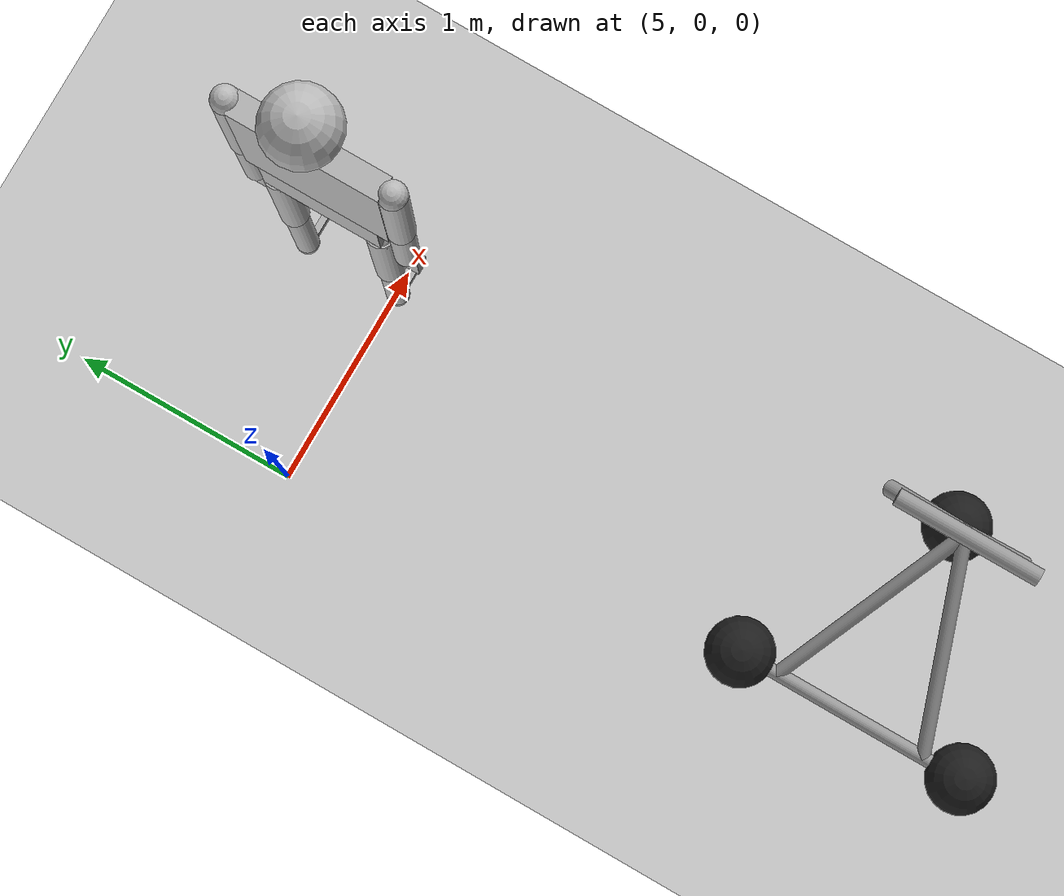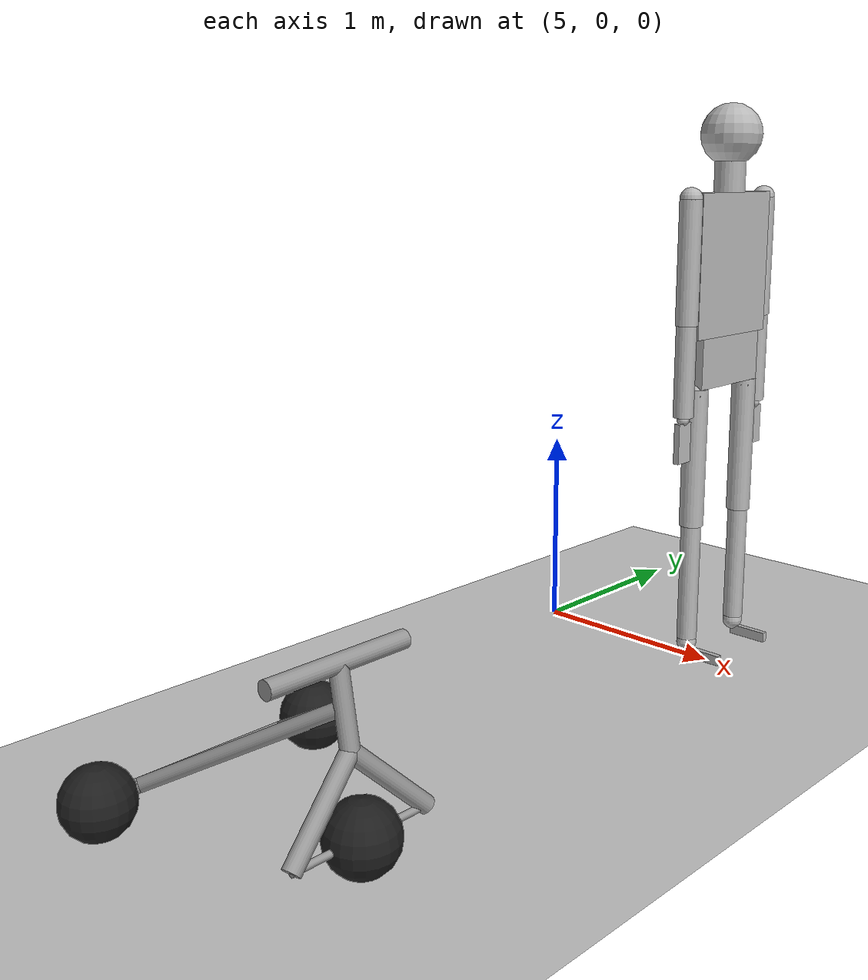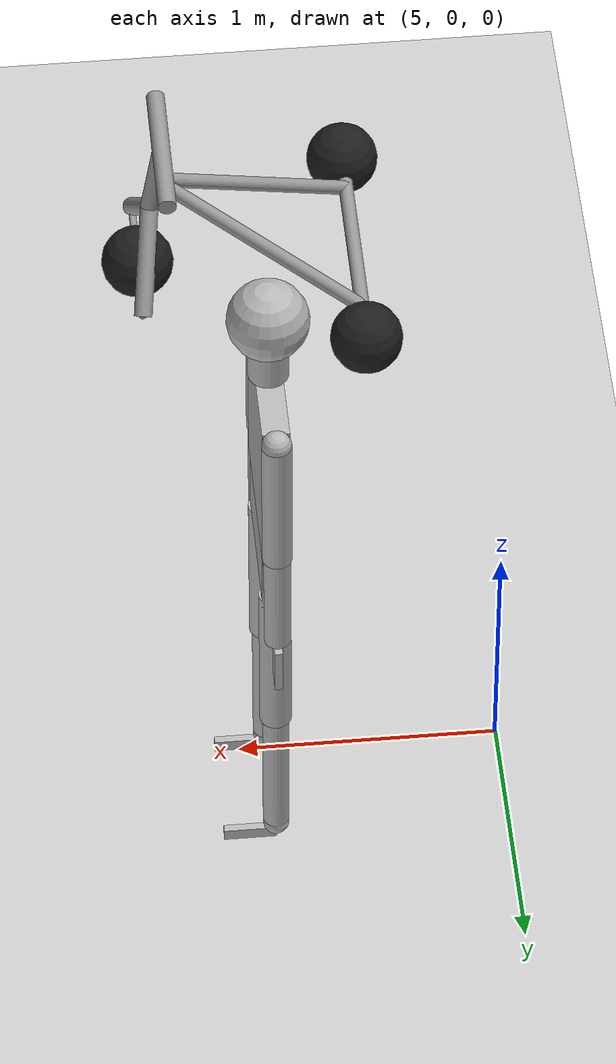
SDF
<sdf version="1.6">
 <world name="default">
  <model name="ground_plane">
   <static>1</static>
   <link name="link">
    <collision name="collision">
     <geometry><plane><normal>0 0 1</normal><size>100 100</size></plane></geometry>
     <surface><friction><ode><mu>100</mu><mu2>50</mu2></ode></friction></surface>
    </collision>
    <visual name="visual">
     <cast_shadows>0</cast_shadows>
     <geometry><plane><normal>0 0 1</normal><size>100 100</size></plane></geometry>
     <material>
      <script><uri>file://media/materials/scripts/gazebo.material</uri><name>Gazebo/Grey</name></script>
     </material>
    </visual>
   </link>
  </model>
  <model name="ragdoll">
   <pose>5.89233 0.203467 1.4 0 -0 0</pose>
   <link name="hip">
    <inertial>
     <inertia><ixx>0.1</ixx><ixy>0</ixy><ixz>0</ixz><iyy>0.1</iyy><iyz>0</iyz><izz>0.1</izz></inertia>
     <mass>10</mass>
    </inertial>
    <collision name="hip_geom">
     <pose>0 0 0.125 0 -0 0</pose>
     <geometry><box><size>0.1 0.5 0.25</size></box></geometry>
     <surface>
      <friction><ode><mu>-1</mu><mu2>-1</mu2><fdir1>0 0 0</fdir1><slip1>0</slip1><slip2>0</slip2></ode></friction>
      <bounce><restitution_coefficient>0</restitution_coefficient><threshold>100000</threshold></bounce>
      <contact>
       <ode>
        <soft_cfm>0</soft_cfm>
        <soft_erp>0.2</soft_erp>
        <kp>1e+12</kp>
        <kd>1</kd>
        <max_vel>0</max_vel>
        <min_depth>0.001</min_depth>
       </ode>
      </contact>
     </surface>
    </collision>
    <visual name="hip_geom_visual">
     <pose>0 0 0.125 0 -0 0</pose>
     <geometry><box><size>0.1 0.5 0.25</size></box></geometry>
    </visual>
    <gravity>0</gravity>
   </link>
   <link name="l_thigh_pan">
    <pose>0 0.22 0 0 -0 0</pose>
    <inertial>
     <inertia><ixx>0.01</ixx><ixy>0</ixy><ixz>0</ixz><iyy>0.01</iyy><iyz>0</iyz><izz>0.01</izz></inertia>
     <mass>1</mass>
    </inertial>
    <collision name="l_thigh_pan_geom">
     <pose>0 0 -0.03 0 -0 0</pose>
     <geometry><sphere><radius>0.06</radius></sphere></geometry>
     <surface>
      <friction><ode><mu>-1</mu><mu2>-1</mu2><fdir1>0 0 0</fdir1><slip1>0</slip1><slip2>0</slip2></ode></friction>
      <bounce><restitution_coefficient>0</restitution_coefficient><threshold>100000</threshold></bounce>
      <contact>
       <ode>
        <soft_cfm>0</soft_cfm>
        <soft_erp>0.2</soft_erp>
        <kp>1e+12</kp>
        <kd>1</kd>
        <max_vel>0</max_vel>
        <min_depth>0.001</min_depth>
       </ode>
      </contact>
     </surface>
    </collision>
    <visual name="l_thigh_pan_geom_visual">
     <pose>0 0 -0.03 0 -0 0</pose>
     <geometry><sphere><radius>0.06</radius></sphere></geometry>
    </visual>
    <gravity>0</gravity>
   </link>
   <link name="l_thigh_lift">
    <pose>0 0.22 0 0 -0 0</pose>
    <inertial>
     <inertia><ixx>0.05</ixx><ixy>0</ixy><ixz>0</ixz><iyy>0.05</iyy><iyz>0</iyz><izz>0.05</izz></inertia>
     <mass>5</mass>
    </inertial>
    <collision name="l_thigh_lift_geom">
     <pose>0 0 -0.35 0 -0 0</pose>
     <geometry><cylinder><radius>0.06</radius><length>0.7</length></cylinder></geometry>
     <surface>
      <friction><ode><mu>-1</mu><mu2>-1</mu2><fdir1>0 0 0</fdir1><slip1>0</slip1><slip2>0</slip2></ode></friction>
      <bounce><restitution_coefficient>0</restitution_coefficient><threshold>100000</threshold></bounce>
      <contact>
       <ode>
        <soft_cfm>0</soft_cfm>
        <soft_erp>0.2</soft_erp>
        <kp>1e+12</kp>
        <kd>1</kd>
        <max_vel>0</max_vel>
        <min_depth>0.001</min_depth>
       </ode>
      </contact>
     </surface>
    </collision>
    <visual name="l_thigh_lift_geom_visual">
     <pose>0 0 -0.35 0 -0 0</pose>
     <geometry><cylinder><radius>0.06</radius><length>0.7</length></cylinder></geometry>
    </visual>
    <gravity>0</gravity>
   </link>
   <link name="l_calf">
    <pose>0 0.22 -0.7 0 -0 0</pose>
    <inertial>
     <inertia><ixx>0.02</ixx><ixy>0</ixy><ixz>0</ixz><iyy>0.02</iyy><iyz>0</iyz><izz>0.02</izz></inertia>
     <mass>2</mass>
    </inertial>
    <collision name="l_calf_geom">
     <pose>0 0 -0.3 0 -0 0</pose>
     <geometry><cylinder><radius>0.05</radius><length>0.6</length></cylinder></geometry>
     <surface>
      <friction><ode><mu>-1</mu><mu2>-1</mu2><fdir1>0 0 0</fdir1><slip1>0</slip1><slip2>0</slip2></ode></friction>
      <bounce><restitution_coefficient>0</restitution_coefficient><threshold>100000</threshold></bounce>
      <contact>
       <ode>
        <soft_cfm>0</soft_cfm>
        <soft_erp>0.2</soft_erp>
        <kp>1e+12</kp>
        <kd>1</kd>
        <max_vel>0</max_vel>
        <min_depth>0.001</min_depth>
       </ode>
      </contact>
     </surface>
    </collision>
    <visual name="l_calf_geom_visual">
     <pose>0 0 -0.3 0 -0 0</pose>
     <geometry><cylinder><radius>0.05</radius><length>0.6</length></cylinder></geometry>
    </visual>
    <gravity>0</gravity>
   </link>
   <link name="l_ankle">
    <pose>0 0.22 -1.325 0 -0 0</pose>
    <inertial>
     <inertia><ixx>0.01</ixx><ixy>0</ixy><ixz>0</ixz><iyy>0.01</iyy><iyz>0</iyz><izz>0.01</izz></inertia>
     <mass>1</mass>
    </inertial>
    <collision name="l_ankle_geom">
     <geometry><sphere><radius>0.05</radius></sphere></geometry>
     <surface>
      <friction><ode><mu>-1</mu><mu2>-1</mu2><fdir1>0 0 0</fdir1><slip1>0</slip1><slip2>0</slip2></ode></friction>
      <bounce><restitution_coefficient>0</restitution_coefficient><threshold>100000</threshold></bounce>
      <contact>
       <ode>
        <soft_cfm>0</soft_cfm>
        <soft_erp>0.2</soft_erp>
        <kp>1e+12</kp>
        <kd>1</kd>
        <max_vel>0</max_vel>
        <min_depth>0.001</min_depth>
       </ode>
      </contact>
     </surface>
    </collision>
    <visual name="l_ankle_geom_visual"><geometry><sphere><radius>0.05</radius></sphere></geometry></visual>
    <gravity>0</gravity>
   </link>
   <link name="l_foot">
    <pose>0 0.22 -1.35 0 -0 0</pose>
    <inertial>
     <pose>0.1 0 0 0 -0 0</pose>
     <inertia><ixx>0.01</ixx><ixy>0</ixy><ixz>0</ixz><iyy>0.01</iyy><iyz>0</iyz><izz>0.01</izz></inertia>
     <mass>1</mass>
    </inertial>
    <collision name="l_foot_geom">
     <pose>0.1 0 -0.025 0 -0 0</pose>
     <geometry><box><size>0.2 0.03 0.05</size></box></geometry>
     <surface>
      <friction><ode><mu>-1</mu><mu2>-1</mu2><fdir1>0 0 0</fdir1><slip1>0</slip1><slip2>0</slip2></ode></friction>
      <bounce><restitution_coefficient>0</restitution_coefficient><threshold>100000</threshold></bounce>
      <contact>
       <ode>
        <soft_cfm>0</soft_cfm>
        <soft_erp>0.2</soft_erp>
        <kp>1e+12</kp>
        <kd>1</kd>
        <max_vel>0</max_vel>
        <min_depth>0.001</min_depth>
       </ode>
      </contact>
     </surface>
    </collision>
    <visual name="l_foot_geom_visual">
     <pose>0.1 0 -0.025 0 -0 0</pose>
     <geometry><box><size>0.2 0.03 0.05</size></box></geometry>
    </visual>
   </link>
   <link name="r_thigh_pan">
    <pose>0 -0.22 0 0 -0 0</pose>
    <inertial>
     <inertia><ixx>0.01</ixx><ixy>0</ixy><ixz>0</ixz><iyy>0.01</iyy><iyz>0</iyz><izz>0.01</izz></inertia>
     <mass>1</mass>
    </inertial>
    <collision name="r_thigh_pan_geom">
     <pose>0 0 -0.03 0 -0 0</pose>
     <geometry><sphere><radius>0.06</radius></sphere></geometry>
     <surface>
      <friction><ode><mu>-1</mu><mu2>-1</mu2><fdir1>0 0 0</fdir1><slip1>0</slip1><slip2>0</slip2></ode></friction>
      <bounce><restitution_coefficient>0</restitution_coefficient><threshold>100000</threshold></bounce>
      <contact>
       <ode>
        <soft_cfm>0</soft_cfm>
        <soft_erp>0.2</soft_erp>
        <kp>1e+12</kp>
        <kd>1</kd>
        <max_vel>0</max_vel>
        <min_depth>0.001</min_depth>
       </ode>
      </contact>
     </surface>
    </collision>
    <visual name="r_thigh_pan_geom_visual">
     <pose>0 0 -0.03 0 -0 0</pose>
     <geometry><sphere><radius>0.06</radius></sphere></geometry>
    </visual>
    <gravity>0</gravity>
   </link>
   <link name="r_thigh_lift">
    <pose>0 -0.22 0 0 -0 0</pose>
    <inertial>
     <inertia><ixx>0.05</ixx><ixy>0</ixy><ixz>0</ixz><iyy>0.05</iyy><iyz>0</iyz><izz>0.05</izz></inertia>
     <mass>5</mass>
    </inertial>
    <collision name="r_thigh_lift_geom">
     <pose>0 0 -0.35 0 -0 0</pose>
     <geometry><cylinder><radius>0.06</radius><length>0.7</length></cylinder></geometry>
     <surface>
      <friction><ode><mu>-1</mu><mu2>-1</mu2><fdir1>0 0 0</fdir1><slip1>0</slip1><slip2>0</slip2></ode></friction>
      <bounce><restitution_coefficient>0</restitution_coefficient><threshold>100000</threshold></bounce>
      <contact>
       <ode>
        <soft_cfm>0</soft_cfm>
        <soft_erp>0.2</soft_erp>
        <kp>1e+12</kp>
        <kd>1</kd>
        <max_vel>0</max_vel>
        <min_depth>0.001</min_depth>
       </ode>
      </contact>
     </surface>
    </collision>
    <visual name="r_thigh_lift_geom_visual">
     <pose>0 0 -0.35 0 -0 0</pose>
     <geometry><cylinder><radius>0.06</radius><length>0.7</length></cylinder></geometry>
    </visual>
    <gravity>0</gravity>
   </link>
   <link name="r_calf">
    <pose>0 -0.22 -0.7 0 -0 0</pose>
    <inertial>
     <inertia><ixx>0.02</ixx><ixy>0</ixy><ixz>0</ixz><iyy>0.02</iyy><iyz>0</iyz><izz>0.02</izz></inertia>
     <mass>2</mass>
    </inertial>
    <collision name="r_calf_geom">
     <pose>0 0 -0.3 0 -0 0</pose>
     <geometry><cylinder><radius>0.05</radius><length>0.6</length></cylinder></geometry>
     <surface>
      <friction><ode><mu>-1</mu><mu2>-1</mu2><fdir1>0 0 0</fdir1><slip1>0</slip1><slip2>0</slip2></ode></friction>
      <bounce><restitution_coefficient>0</restitution_coefficient><threshold>100000</threshold></bounce>
      <contact>
       <ode>
        <soft_cfm>0</soft_cfm>
        <soft_erp>0.2</soft_erp>
        <kp>1e+12</kp>
        <kd>1</kd>
        <max_vel>0</max_vel>
        <min_depth>0.001</min_depth>
       </ode>
      </contact>
     </surface>
    </collision>
    <visual name="r_calf_geom_visual">
     <pose>0 0 -0.3 0 -0 0</pose>
     <geometry><cylinder><radius>0.05</radius><length>0.6</length></cylinder></geometry>
    </visual>
    <gravity>0</gravity>
   </link>
   <link name="r_ankle">
    <pose>0 -0.22 -1.325 0 -0 0</pose>
    <inertial>
     <inertia><ixx>0.01</ixx><ixy>0</ixy><ixz>0</ixz><iyy>0.01</iyy><iyz>0</iyz><izz>0.01</izz></inertia>
     <mass>1</mass>
    </inertial>
    <collision name="r_ankle_geom">
     <geometry><sphere><radius>0.05</radius></sphere></geometry>
     <surface>
      <friction><ode><mu>-1</mu><mu2>-1</mu2><fdir1>0 0 0</fdir1><slip1>0</slip1><slip2>0</slip2></ode></friction>
      <bounce><restitution_coefficient>0</restitution_coefficient><threshold>100000</threshold></bounce>
      <contact>
       <ode>
        <soft_cfm>0</soft_cfm>
        <soft_erp>0.2</soft_erp>
        <kp>1e+12</kp>
        <kd>1</kd>
        <max_vel>0</max_vel>
        <min_depth>0.001</min_depth>
       </ode>
      </contact>
     </surface>
    </collision>
    <visual name="r_ankle_geom_visual"><geometry><sphere><radius>0.05</radius></sphere></geometry></visual>
    <gravity>0</gravity>
   </link>
   <link name="r_foot">
    <pose>0 -0.22 -1.35 0 -0 0</pose>
    <inertial>
     <pose>0.1 0 0 0 -0 0</pose>
     <inertia><ixx>0.01</ixx><ixy>0</ixy><ixz>0</ixz><iyy>0.01</iyy><iyz>0</iyz><izz>0.01</izz></inertia>
     <mass>1</mass>
    </inertial>
    <collision name="r_foot_geom">
     <pose>0.1 0 -0.025 0 -0 0</pose>
     <geometry><box><size>0.2 0.03 0.05</size></box></geometry>
     <surface>
      <friction><ode><mu>-1</mu><mu2>-1</mu2><fdir1>0 0 0</fdir1><slip1>0</slip1><slip2>0</slip2></ode></friction>
      <bounce><restitution_coefficient>0</restitution_coefficient><threshold>100000</threshold></bounce>
      <contact>
       <ode>
        <soft_cfm>0</soft_cfm>
        <soft_erp>0.2</soft_erp>
        <kp>1e+12</kp>
        <kd>1</kd>
        <max_vel>0</max_vel>
        <min_depth>0.001</min_depth>
       </ode>
      </contact>
     </surface>
    </collision>
    <visual name="r_foot_geom_visual">
     <pose>0.1 0 -0.025 0 -0 0</pose>
     <geometry><box><size>0.2 0.03 0.05</size></box></geometry>
    </visual>
   </link>
   <link name="torso">
    <pose>0 0 0.25 0 -0 0</pose>
    <inertial>
     <inertia><ixx>0.3</ixx><ixy>0</ixy><ixz>0</ixz><iyy>0.3</iyy><iyz>0</iyz><izz>0.3</izz></inertia>
     <mass>30</mass>
    </inertial>
    <collision name="torso_geom">
     <pose>0 0 0.35 0 -0 0</pose>
     <geometry><box><size>0.1 0.6 0.7</size></box></geometry>
     <surface>
      <friction><ode><mu>-1</mu><mu2>-1</mu2><fdir1>0 0 0</fdir1><slip1>0</slip1><slip2>0</slip2></ode></friction>
      <bounce><restitution_coefficient>0</restitution_coefficient><threshold>100000</threshold></bounce>
      <contact>
       <ode>
        <soft_cfm>0</soft_cfm>
        <soft_erp>0.2</soft_erp>
        <kp>1e+12</kp>
        <kd>1</kd>
        <max_vel>0</max_vel>
        <min_depth>0.001</min_depth>
       </ode>
      </contact>
     </surface>
    </collision>
    <visual name="torso_geom_visual">
     <pose>0 0 0.35 0 -0 0</pose>
     <geometry><box><size>0.1 0.6 0.7</size></box></geometry>
    </visual>
    <gravity>0</gravity>
   </link>
   <link name="l_shoulder">
    <pose>0 0.3275 0.9225 0 -0 0</pose>
    <inertial>
     <inertia><ixx>0.01</ixx><ixy>0</ixy><ixz>0</ixz><iyy>0.01</iyy><iyz>0</iyz><izz>0.01</izz></inertia>
     <mass>1</mass>
    </inertial>
    <collision name="l_shoulder_geom">
     <geometry><sphere><radius>0.055</radius></sphere></geometry>
     <surface>
      <friction><ode><mu>-1</mu><mu2>-1</mu2><fdir1>0 0 0</fdir1><slip1>0</slip1><slip2>0</slip2></ode></friction>
      <bounce><restitution_coefficient>0</restitution_coefficient><threshold>100000</threshold></bounce>
      <contact>
       <ode>
        <soft_cfm>0</soft_cfm>
        <soft_erp>0.2</soft_erp>
        <kp>1e+12</kp>
        <kd>1</kd>
        <max_vel>0</max_vel>
        <min_depth>0.001</min_depth>
       </ode>
      </contact>
     </surface>
    </collision>
    <visual name="l_shoulder_geom_visual"><geometry><sphere><radius>0.055</radius></sphere></geometry></visual>
    <gravity>0</gravity>
   </link>
   <link name="l_upper_arm">
    <pose>0 0.3275 0.9225 0 -0 0</pose>
    <inertial>
     <inertia><ixx>0.02</ixx><ixy>0</ixy><ixz>0</ixz><iyy>0.02</iyy><iyz>0</iyz><izz>0.02</izz></inertia>
     <mass>2</mass>
    </inertial>
    <collision name="l_upper_arm_geom">
     <pose>0 0 -0.3 0 -0 0</pose>
     <geometry><cylinder><radius>0.055</radius><length>0.6</length></cylinder></geometry>
     <surface>
      <friction><ode><mu>-1</mu><mu2>-1</mu2><fdir1>0 0 0</fdir1><slip1>0</slip1><slip2>0</slip2></ode></friction>
      <bounce><restitution_coefficient>0</restitution_coefficient><threshold>100000</threshold></bounce>
      <contact>
       <ode>
        <soft_cfm>0</soft_cfm>
        <soft_erp>0.2</soft_erp>
        <kp>1e+12</kp>
        <kd>1</kd>
        <max_vel>0</max_vel>
        <min_depth>0.001</min_depth>
       </ode>
      </contact>
     </surface>
    </collision>
    <visual name="l_upper_arm_geom_visual">
     <pose>0 0 -0.3 0 -0 0</pose>
     <geometry><cylinder><radius>0.055</radius><length>0.6</length></cylinder></geometry>
    </visual>
    <gravity>0</gravity>
   </link>
   <link name="l_forearm">
    <pose>0 0.3275 0.3225 0 -0 0</pose>
    <inertial>
     <inertia><ixx>0.01</ixx><ixy>0</ixy><ixz>0</ixz><iyy>0.01</iyy><iyz>0</iyz><izz>0.01</izz></inertia>
     <mass>1</mass>
    </inertial>
    <collision name="l_forearm_geom">
     <pose>0 0 -0.225 0 -0 0</pose>
     <geometry><cylinder><radius>0.05</radius><length>0.45</length></cylinder></geometry>
     <surface>
      <friction><ode><mu>-1</mu><mu2>-1</mu2><fdir1>0 0 0</fdir1><slip1>0</slip1><slip2>0</slip2></ode></friction>
      <bounce><restitution_coefficient>0</restitution_coefficient><threshold>100000</threshold></bounce>
      <contact>
       <ode>
        <soft_cfm>0</soft_cfm>
        <soft_erp>0.2</soft_erp>
        <kp>1e+12</kp>
        <kd>1</kd>
        <max_vel>0</max_vel>
        <min_depth>0.001</min_depth>
       </ode>
      </contact>
     </surface>
    </collision>
    <visual name="l_forearm_geom_visual">
     <pose>0 0 -0.225 0 -0 0</pose>
     <geometry><cylinder><radius>0.05</radius><length>0.45</length></cylinder></geometry>
    </visual>
    <gravity>0</gravity>
   </link>
   <link name="l_wrist">
    <pose>0 0.3275 -0.1425 0 -0 0</pose>
    <inertial>
     <inertia><ixx>0.01</ixx><ixy>0</ixy><ixz>0</ixz><iyy>0.01</iyy><iyz>0</iyz><izz>0.01</izz></inertia>
     <mass>1</mass>
    </inertial>
    <collision name="l_wrist_geom">
     <geometry><sphere><radius>0.03</radius></sphere></geometry>
     <surface>
      <friction><ode><mu>-1</mu><mu2>-1</mu2><fdir1>0 0 0</fdir1><slip1>0</slip1><slip2>0</slip2></ode></friction>
      <bounce><restitution_coefficient>0</restitution_coefficient><threshold>100000</threshold></bounce>
      <contact>
       <ode>
        <soft_cfm>0</soft_cfm>
        <soft_erp>0.2</soft_erp>
        <kp>1e+12</kp>
        <kd>1</kd>
        <max_vel>0</max_vel>
        <min_depth>0.001</min_depth>
       </ode>
      </contact>
     </surface>
    </collision>
    <visual name="l_wrist_geom_visual"><geometry><sphere><radius>0.03</radius></sphere></geometry></visual>
    <gravity>0</gravity>
   </link>
   <link name="l_hand">
    <pose>0 0.3275 -0.1575 0 -0 0</pose>
    <inertial>
     <inertia><ixx>0.01</ixx><ixy>0</ixy><ixz>0</ixz><iyy>0.01</iyy><iyz>0</iyz><izz>0.01</izz></inertia>
     <mass>1</mass>
    </inertial>
    <collision name="l_hand_geom">
     <pose>0 0 -0.1 0 -0 0</pose>
     <geometry><box><size>0.03 0.1 0.2</size></box></geometry>
     <surface>
      <friction><ode><mu>-1</mu><mu2>-1</mu2><fdir1>0 0 0</fdir1><slip1>0</slip1><slip2>0</slip2></ode></friction>
      <bounce><restitution_coefficient>0</restitution_coefficient><threshold>100000</threshold></bounce>
      <contact>
       <ode>
        <soft_cfm>0</soft_cfm>
        <soft_erp>0.2</soft_erp>
        <kp>1e+12</kp>
        <kd>1</kd>
        <max_vel>0</max_vel>
        <min_depth>0.001</min_depth>
       </ode>
      </contact>
     </surface>
    </collision>
    <visual name="l_hand_geom_visual">
     <pose>0 0 -0.1 0 -0 0</pose>
     <geometry><box><size>0.03 0.1 0.2</size></box></geometry>
    </visual>
    <gravity>0</gravity>
   </link>
   <link name="neck">
    <pose>0 0 0.95 0 -0 0</pose>
    <inertial>
     <inertia><ixx>0.01</ixx><ixy>0</ixy><ixz>0</ixz><iyy>0.01</iyy><iyz>0</iyz><izz>0.01</izz></inertia>
     <mass>1</mass>
    </inertial>
    <collision name="neck_geom">
     <pose>0 0 0.1 0 -0 0</pose>
     <geometry><cylinder><radius>0.075</radius><length>0.2</length></cylinder></geometry>
     <surface>
      <friction><ode><mu>-1</mu><mu2>-1</mu2><fdir1>0 0 0</fdir1><slip1>0</slip1><slip2>0</slip2></ode></friction>
      <bounce><restitution_coefficient>0</restitution_coefficient><threshold>100000</threshold></bounce>
      <contact>
       <ode>
        <soft_cfm>0</soft_cfm>
        <soft_erp>0.2</soft_erp>
        <kp>1e+12</kp>
        <kd>1</kd>
        <max_vel>0</max_vel>
        <min_depth>0.001</min_depth>
       </ode>
      </contact>
     </surface>
    </collision>
    <visual name="neck_geom_visual">
     <pose>0 0 0.1 0 -0 0</pose>
     <geometry><cylinder><radius>0.075</radius><length>0.2</length></cylinder></geometry>
    </visual>
    <gravity>0</gravity>
   </link>
   <link name="head">
    <pose>0 0 1.225 0 -0 0</pose>
    <inertial>
     <inertia><ixx>0.1</ixx><ixy>0</ixy><ixz>0</ixz><iyy>0.1</iyy><iyz>0</iyz><izz>0.1</izz></inertia>
     <mass>10</mass>
    </inertial>
    <collision name="head_geom">
     <geometry><sphere><radius>0.15</radius></sphere></geometry>
     <surface>
      <friction><ode><mu>-1</mu><mu2>-1</mu2><fdir1>0 0 0</fdir1><slip1>0</slip1><slip2>0</slip2></ode></friction>
      <bounce><restitution_coefficient>0</restitution_coefficient><threshold>100000</threshold></bounce>
      <contact>
       <ode>
        <soft_cfm>0</soft_cfm>
        <soft_erp>0.2</soft_erp>
        <kp>1e+12</kp>
        <kd>1</kd>
        <max_vel>0</max_vel>
        <min_depth>0.001</min_depth>
       </ode>
      </contact>
     </surface>
    </collision>
    <visual name="head_geom_visual"><geometry><sphere><radius>0.15</radius></sphere></geometry></visual>
    <gravity>0</gravity>
   </link>
   <link name="r_shoulder">
    <pose>0 -0.3275 0.9225 0 -0 0</pose>
    <inertial>
     <inertia><ixx>0.01</ixx><ixy>0</ixy><ixz>0</ixz><iyy>0.01</iyy><iyz>0</iyz><izz>0.01</izz></inertia>
     <mass>1</mass>
    </inertial>
    <collision name="r_shoulder_geom">
     <geometry><sphere><radius>0.055</radius></sphere></geometry>
     <surface>
      <friction><ode><mu>-1</mu><mu2>-1</mu2><fdir1>0 0 0</fdir1><slip1>0</slip1><slip2>0</slip2></ode></friction>
      <bounce><restitution_coefficient>0</restitution_coefficient><threshold>100000</threshold></bounce>
      <contact>
       <ode>
        <soft_cfm>0</soft_cfm>
        <soft_erp>0.2</soft_erp>
        <kp>1e+12</kp>
        <kd>1</kd>
        <max_vel>0</max_vel>
        <min_depth>0.001</min_depth>
       </ode>
      </contact>
     </surface>
    </collision>
    <visual name="r_shoulder_geom_visual"><geometry><sphere><radius>0.055</radius></sphere></geometry></visual>
    <gravity>0</gravity>
   </link>
   <link name="r_upper_arm">
    <pose>0 -0.3275 0.9225 0 -0 0</pose>
    <inertial>
     <inertia><ixx>0.02</ixx><ixy>0</ixy><ixz>0</ixz><iyy>0.02</iyy><iyz>0</iyz><izz>0.02</izz></inertia>
     <mass>2</mass>
    </inertial>
    <collision name="r_upper_arm_geom">
     <pose>0 0 -0.3 0 -0 0</pose>
     <geometry><cylinder><radius>0.055</radius><length>0.6</length></cylinder></geometry>
     <surface>
      <friction><ode><mu>-1</mu><mu2>-1</mu2><fdir1>0 0 0</fdir1><slip1>0</slip1><slip2>0</slip2></ode></friction>
      <bounce><restitution_coefficient>0</restitution_coefficient><threshold>100000</threshold></bounce>
      <contact>
       <ode>
        <soft_cfm>0</soft_cfm>
        <soft_erp>0.2</soft_erp>
        <kp>1e+12</kp>
        <kd>1</kd>
        <max_vel>0</max_vel>
        <min_depth>0.001</min_depth>
       </ode>
      </contact>
     </surface>
    </collision>
    <visual name="r_upper_arm_geom_visual">
     <pose>0 0 -0.3 0 -0 0</pose>
     <geometry><cylinder><radius>0.055</radius><length>0.6</length></cylinder></geometry>
    </visual>
    <gravity>0</gravity>
   </link>
   <link name="r_forearm">
    <pose>0 -0.3275 0.3225 0 -0 0</pose>
    <inertial>
     <inertia><ixx>0.01</ixx><ixy>0</ixy><ixz>0</ixz><iyy>0.01</iyy><iyz>0</iyz><izz>0.01</izz></inertia>
     <mass>1</mass>
    </inertial>
    <collision name="r_forearm_geom">
     <pose>0 0 -0.225 0 -0 0</pose>
     <geometry><cylinder><radius>0.05</radius><length>0.45</length></cylinder></geometry>
     <surface>
      <friction><ode><mu>-1</mu><mu2>-1</mu2><fdir1>0 0 0</fdir1><slip1>0</slip1><slip2>0</slip2></ode></friction>
      <bounce><restitution_coefficient>0</restitution_coefficient><threshold>100000</threshold></bounce>
      <contact>
       <ode>
        <soft_cfm>0</soft_cfm>
        <soft_erp>0.2</soft_erp>
        <kp>1e+12</kp>
        <kd>1</kd>
        <max_vel>0</max_vel>
        <min_depth>0.001</min_depth>
       </ode>
      </contact>
     </surface>
    </collision>
    <visual name="r_forearm_geom_visual">
     <pose>0 0 -0.225 0 -0 0</pose>
     <geometry><cylinder><radius>0.05</radius><length>0.45</length></cylinder></geometry>
    </visual>
    <gravity>0</gravity>
   </link>
   <link name="r_wrist">
    <pose>0 -0.3275 -0.1425 0 -0 0</pose>
    <inertial>
     <inertia><ixx>0.01</ixx><ixy>0</ixy><ixz>0</ixz><iyy>0.01</iyy><iyz>0</iyz><izz>0.01</izz></inertia>
     <mass>1</mass>
    </inertial>
    <collision name="r_wrist_geom">
     <geometry><sphere><radius>0.03</radius></sphere></geometry>
     <surface>
      <friction><ode><mu>-1</mu><mu2>-1</mu2><fdir1>0 0 0</fdir1><slip1>0</slip1><slip2>0</slip2></ode></friction>
      <bounce><restitution_coefficient>0</restitution_coefficient><threshold>100000</threshold></bounce>
      <contact>
       <ode>
        <soft_cfm>0</soft_cfm>
        <soft_erp>0.2</soft_erp>
        <kp>1e+12</kp>
        <kd>1</kd>
        <max_vel>0</max_vel>
        <min_depth>0.001</min_depth>
       </ode>
      </contact>
     </surface>
    </collision>
    <visual name="r_wrist_geom_visual"><geometry><sphere><radius>0.03</radius></sphere></geometry></visual>
    <gravity>0</gravity>
   </link>
   <link name="r_hand">
    <pose>0 -0.3275 -0.1575 0 -0 0</pose>
    <inertial>
     <inertia><ixx>0.01</ixx><ixy>0</ixy><ixz>0</ixz><iyy>0.01</iyy><iyz>0</iyz><izz>0.01</izz></inertia>
     <mass>1</mass>
    </inertial>
    <collision name="r_hand_geom">
     <pose>0 0 -0.1 0 -0 0</pose>
     <geometry><box><size>0.03 0.1 0.2</size></box></geometry>
     <surface>
      <friction><ode><mu>-1</mu><mu2>-1</mu2><fdir1>0 0 0</fdir1><slip1>0</slip1><slip2>0</slip2></ode></friction>
      <bounce><restitution_coefficient>0</restitution_coefficient><threshold>100000</threshold></bounce>
      <contact>
       <ode>
        <soft_cfm>0</soft_cfm>
        <soft_erp>0.2</soft_erp>
        <kp>1e+12</kp>
        <kd>1</kd>
        <max_vel>0</max_vel>
        <min_depth>0.001</min_depth>
       </ode>
      </contact>
     </surface>
    </collision>
    <visual name="r_hand_geom_visual">
     <pose>0 0 -0.1 0 -0 0</pose>
     <geometry><box><size>0.03 0.1 0.2</size></box></geometry>
    </visual>
    <gravity>0</gravity>
   </link>
   <joint name="l_thigh_pan_joint" type="revolute">
    <parent>hip</parent>
    <child>l_thigh_pan</child>
    <axis>
     <dynamics>
      <damping>0</damping>
      <friction>0</friction>
      <spring_reference>0</spring_reference>
      <spring_stiffness>0</spring_stiffness>
     </dynamics>
     <limit><lower>-1.5708</lower><upper>1.5708</upper><effort>0</effort><velocity>0</velocity></limit>
     <xyz>0 0 1</xyz>
     <use_parent_model_frame>1</use_parent_model_frame>
    </axis>
   </joint>
   <joint name="l_thigh_lift_joint" type="revolute">
    <parent>l_thigh_pan</parent>
    <child>l_thigh_lift</child>
    <axis>
     <dynamics>
      <damping>0</damping>
      <friction>0</friction>
      <spring_reference>0</spring_reference>
      <spring_stiffness>0</spring_stiffness>
     </dynamics>
     <limit><lower>-1.5708</lower><upper>1.5708</upper><effort>0</effort><velocity>0</velocity></limit>
     <xyz>0 1 0</xyz>
     <use_parent_model_frame>1</use_parent_model_frame>
    </axis>
   </joint>
   <joint name="l_calf_joint" type="revolute">
    <parent>l_thigh_lift</parent>
    <child>l_calf</child>
    <axis>
     <dynamics>
      <damping>0</damping>
      <friction>0</friction>
      <spring_reference>0</spring_reference>
      <spring_stiffness>0</spring_stiffness>
     </dynamics>
     <limit><lower>-1.5708</lower><upper>1.5708</upper><effort>0</effort><velocity>0</velocity></limit>
     <xyz>0 1 0</xyz>
     <use_parent_model_frame>1</use_parent_model_frame>
    </axis>
   </joint>
   <joint name="l_ankle_joint" type="revolute">
    <parent>l_calf</parent>
    <child>l_ankle</child>
    <axis>
     <dynamics>
      <damping>0</damping>
      <friction>0</friction>
      <spring_reference>0</spring_reference>
      <spring_stiffness>0</spring_stiffness>
     </dynamics>
     <limit><lower>-1.5708</lower><upper>1.5708</upper><effort>0</effort><velocity>0</velocity></limit>
     <xyz>0 1 0</xyz>
     <use_parent_model_frame>1</use_parent_model_frame>
    </axis>
   </joint>
   <joint name="l_foot_joint" type="revolute">
    <parent>l_ankle</parent>
    <child>l_foot</child>
    <axis>
     <dynamics>
      <damping>0</damping>
      <friction>0</friction>
      <spring_reference>0</spring_reference>
      <spring_stiffness>0</spring_stiffness>
     </dynamics>
     <limit><lower>-1.5708</lower><upper>1.5708</upper><effort>0</effort><velocity>0</velocity></limit>
     <xyz>1 0 0</xyz>
     <use_parent_model_frame>1</use_parent_model_frame>
    </axis>
   </joint>
   <joint name="r_thigh_pan_joint" type="revolute">
    <parent>hip</parent>
    <child>r_thigh_pan</child>
    <axis>
     <dynamics>
      <damping>0</damping>
      <friction>0</friction>
      <spring_reference>0</spring_reference>
      <spring_stiffness>0</spring_stiffness>
     </dynamics>
     <limit><lower>-1.5708</lower><upper>1.5708</upper><effort>0</effort><velocity>0</velocity></limit>
     <xyz>0 0 1</xyz>
     <use_parent_model_frame>1</use_parent_model_frame>
    </axis>
   </joint>
   <joint name="r_thigh_lift_joint" type="revolute">
    <parent>r_thigh_pan</parent>
    <child>r_thigh_lift</child>
    <axis>
     <dynamics>
      <damping>0</damping>
      <friction>0</friction>
      <spring_reference>0</spring_reference>
      <spring_stiffness>0</spring_stiffness>
     </dynamics>
     <limit><lower>-1.5708</lower><upper>1.5708</upper><effort>0</effort><velocity>0</velocity></limit>
     <xyz>0 1 0</xyz>
     <use_parent_model_frame>1</use_parent_model_frame>
    </axis>
   </joint>
   <joint name="r_calf_joint" type="revolute">
    <parent>r_thigh_lift</parent>
    <child>r_calf</child>
    <axis>
     <dynamics>
      <damping>0</damping>
      <friction>0</friction>
      <spring_reference>0</spring_reference>
      <spring_stiffness>0</spring_stiffness>
     </dynamics>
     <limit><lower>-1.5708</lower><upper>1.5708</upper><effort>0</effort><velocity>0</velocity></limit>
     <xyz>0 1 0</xyz>
     <use_parent_model_frame>1</use_parent_model_frame>
    </axis>
   </joint>
   <joint name="r_ankle_joint" type="revolute">
    <parent>r_calf</parent>
    <child>r_ankle</child>
    <axis>
     <dynamics>
      <damping>0</damping>
      <friction>0</friction>
      <spring_reference>0</spring_reference>
      <spring_stiffness>0</spring_stiffness>
     </dynamics>
     <limit><lower>-1.5708</lower><upper>1.5708</upper><effort>0</effort><velocity>0</velocity></limit>
     <xyz>0 1 0</xyz>
     <use_parent_model_frame>1</use_parent_model_frame>
    </axis>
   </joint>
   <joint name="r_foot_joint" type="revolute">
    <parent>r_ankle</parent>
    <child>r_foot</child>
    <axis>
     <dynamics>
      <damping>0</damping>
      <friction>0</friction>
      <spring_reference>0</spring_reference>
      <spring_stiffness>0</spring_stiffness>
     </dynamics>
     <limit><lower>-1.5708</lower><upper>1.5708</upper><effort>0</effort><velocity>0</velocity></limit>
     <xyz>1 0 0</xyz>
     <use_parent_model_frame>1</use_parent_model_frame>
    </axis>
   </joint>
   <joint name="torso_joint" type="revolute">
    <parent>hip</parent>
    <child>torso</child>
    <axis>
     <dynamics>
      <damping>0</damping>
      <friction>0</friction>
      <spring_reference>0</spring_reference>
      <spring_stiffness>0</spring_stiffness>
     </dynamics>
     <limit><lower>-1.5708</lower><upper>1.5708</upper><effort>0</effort><velocity>0</velocity></limit>
     <xyz>0 1 0</xyz>
     <use_parent_model_frame>1</use_parent_model_frame>
    </axis>
   </joint>
   <joint name="l_shoulder_joint" type="revolute">
    <parent>torso</parent>
    <child>l_shoulder</child>
    <axis>
     <dynamics>
      <damping>0</damping>
      <friction>0</friction>
      <spring_reference>0</spring_reference>
      <spring_stiffness>0</spring_stiffness>
     </dynamics>
     <limit><lower>-1.5708</lower><upper>1.5708</upper><effort>0</effort><velocity>0</velocity></limit>
     <xyz>1 0 0</xyz>
     <use_parent_model_frame>1</use_parent_model_frame>
    </axis>
   </joint>
   <joint name="l_upper_arm_joint" type="revolute">
    <parent>l_shoulder</parent>
    <child>l_upper_arm</child>
    <axis>
     <dynamics>
      <damping>0</damping>
      <friction>0</friction>
      <spring_reference>0</spring_reference>
      <spring_stiffness>0</spring_stiffness>
     </dynamics>
     <limit><lower>-1.5708</lower><upper>1.5708</upper><effort>0</effort><velocity>0</velocity></limit>
     <xyz>0 1 0</xyz>
     <use_parent_model_frame>1</use_parent_model_frame>
    </axis>
   </joint>
   <joint name="l_forearm_joint" type="revolute">
    <parent>l_upper_arm</parent>
    <child>l_forearm</child>
    <axis>
     <dynamics>
      <damping>0</damping>
      <friction>0</friction>
      <spring_reference>0</spring_reference>
      <spring_stiffness>0</spring_stiffness>
     </dynamics>
     <limit><lower>-1.5708</lower><upper>1.5708</upper><effort>0</effort><velocity>0</velocity></limit>
     <xyz>0 1 0</xyz>
     <use_parent_model_frame>1</use_parent_model_frame>
    </axis>
   </joint>
   <joint name="l_wrist_joint" type="revolute">
    <parent>l_forearm</parent>
    <child>l_wrist</child>
    <axis>
     <dynamics>
      <damping>0</damping>
      <friction>0</friction>
      <spring_reference>0</spring_reference>
      <spring_stiffness>0</spring_stiffness>
     </dynamics>
     <limit><lower>-1.5708</lower><upper>1.5708</upper><effort>0</effort><velocity>0</velocity></limit>
     <xyz>0 1 0</xyz>
     <use_parent_model_frame>1</use_parent_model_frame>
    </axis>
   </joint>
   <joint name="l_hand_joint" type="revolute">
    <parent>l_wrist</parent>
    <child>l_hand</child>
    <axis>
     <dynamics>
      <damping>0</damping>
      <friction>0</friction>
      <spring_reference>0</spring_reference>
      <spring_stiffness>0</spring_stiffness>
     </dynamics>
     <limit><lower>-1.5708</lower><upper>1.5708</upper><effort>0</effort><velocity>0</velocity></limit>
     <xyz>0 1 0</xyz>
     <use_parent_model_frame>1</use_parent_model_frame>
    </axis>
   </joint>
   <joint name="neck_joint" type="revolute">
    <parent>torso</parent>
    <child>neck</child>
    <axis>
     <dynamics>
      <damping>0</damping>
      <friction>0</friction>
      <spring_reference>0</spring_reference>
      <spring_stiffness>0</spring_stiffness>
     </dynamics>
     <limit><lower>-1.5708</lower><upper>1.5708</upper><effort>0</effort><velocity>0</velocity></limit>
     <xyz>0 0 1</xyz>
     <use_parent_model_frame>1</use_parent_model_frame>
    </axis>
   </joint>
   <joint name="head_joint" type="revolute">
    <parent>neck</parent>
    <child>head</child>
    <axis>
     <dynamics>
      <damping>0</damping>
      <friction>0</friction>
      <spring_reference>0</spring_reference>
      <spring_stiffness>0</spring_stiffness>
     </dynamics>
     <limit><lower>-1.5708</lower><upper>1.5708</upper><effort>0</effort><velocity>0</velocity></limit>
     <xyz>0 1 0</xyz>
     <use_parent_model_frame>1</use_parent_model_frame>
    </axis>
   </joint>
   <joint name="r_shoulder_joint" type="revolute">
    <parent>torso</parent>
    <child>r_shoulder</child>
    <axis>
     <dynamics>
      <damping>0</damping>
      <friction>0</friction>
      <spring_reference>0</spring_reference>
      <spring_stiffness>0</spring_stiffness>
     </dynamics>
     <limit><lower>-1.5708</lower><upper>1.5708</upper><effort>0</effort><velocity>0</velocity></limit>
     <xyz>1 0 0</xyz>
     <use_parent_model_frame>1</use_parent_model_frame>
    </axis>
   </joint>
   <joint name="r_upper_arm_joint" type="revolute">
    <parent>r_shoulder</parent>
    <child>r_upper_arm</child>
    <axis>
     <dynamics>
      <damping>0</damping>
      <friction>0</friction>
      <spring_reference>0</spring_reference>
      <spring_stiffness>0</spring_stiffness>
     </dynamics>
     <limit><lower>-1.5708</lower><upper>1.5708</upper><effort>0</effort><velocity>0</velocity></limit>
     <xyz>0 1 0</xyz>
     <use_parent_model_frame>1</use_parent_model_frame>
    </axis>
   </joint>
   <joint name="r_forearm_joint" type="revolute">
    <parent>r_upper_arm</parent>
    <child>r_forearm</child>
    <axis>
     <dynamics>
      <damping>0</damping>
      <friction>0</friction>
      <spring_reference>0</spring_reference>
      <spring_stiffness>0</spring_stiffness>
     </dynamics>
     <limit><lower>-1.5708</lower><upper>1.5708</upper><effort>0</effort><velocity>0</velocity></limit>
     <xyz>0 1 0</xyz>
     <use_parent_model_frame>1</use_parent_model_frame>
    </axis>
   </joint>
   <joint name="r_wrist_joint" type="revolute">
    <parent>r_forearm</parent>
    <child>r_wrist</child>
    <axis>
     <dynamics>
      <damping>0</damping>
      <friction>0</friction>
      <spring_reference>0</spring_reference>
      <spring_stiffness>0</spring_stiffness>
     </dynamics>
     <limit><lower>-1.5708</lower><upper>1.5708</upper><effort>0</effort><velocity>0</velocity></limit>
     <xyz>0 1 0</xyz>
     <use_parent_model_frame>1</use_parent_model_frame>
    </axis>
   </joint>
   <joint name="r_hand_joint" type="revolute">
    <parent>r_wrist</parent>
    <child>r_hand</child>
    <axis>
     <dynamics>
      <damping>0</damping>
      <friction>0</friction>
      <spring_reference>0</spring_reference>
      <spring_stiffness>0</spring_stiffness>
     </dynamics>
     <limit><lower>-1.5708</lower><upper>1.5708</upper><effort>0</effort><velocity>0</velocity></limit>
     <xyz>0 1 0</xyz>
     <use_parent_model_frame>1</use_parent_model_frame>
    </axis>
   </joint>
   <static>0</static>
  </model>
  <model name="trisphere_cycle">
   <link name="frame">
    <pose>-0.408559 0 0.385023 0 -0.522021 0</pose>
    <inertial>
     <mass>10</mass>
     <inertia><ixx>0.228</ixx><iyy>0.743521</iyy><izz>0.965521</izz><ixy>0</ixy><ixz>0</ixz><iyz>0</iyz></inertia>
    </inertial>
    <collision name="axle_collision">
     <pose>-0.471335 0 0 1.5708 -0 0</pose>
     <geometry><cylinder><length>1.03923</length><radius>0.03</radius></cylinder></geometry>
    </collision>
    <visual name="axle_visual">
     <pose>-0.471335 0 0 1.5708 -0 0</pose>
     <geometry><cylinder><length>1.03923</length><radius>0.03</radius></cylinder></geometry>
     <material>
      <script><uri>file://media/materials/scripts/gazebo.material</uri><name>Gazebo/Grey</name></script>
     </material>
    </visual>
    <collision name="frame_left_collision">
     <pose>0 0.171552 0 -2.79253 1.57079 3.14159</pose>
     <geometry><cylinder><length>1.00317</length><radius>0.03</radius></cylinder></geometry>
    </collision>
    <visual name="frame_left_visual">
     <pose>0 0.171552 0 -2.79253 1.57079 3.14159</pose>
     <geometry><cylinder><length>1.00317</length><radius>0.03</radius></cylinder></geometry>
     <material>
      <script><uri>file://media/materials/scripts/gazebo.material</uri><name>Gazebo/Grey</name></script>
     </material>
    </visual>
    <collision name="frame_right_collision">
     <pose>0 -0.171552 0 2.79253 1.57079 -3.14159</pose>
     <geometry><cylinder><length>1.00317</length><radius>0.03</radius></cylinder></geometry>
    </collision>
    <visual name="frame_right_visual">
     <pose>0 -0.171552 0 2.79253 1.57079 -3.14159</pose>
     <geometry><cylinder><length>1.00317</length><radius>0.03</radius></cylinder></geometry>
     <material>
      <script><uri>file://media/materials/scripts/gazebo.material</uri><name>Gazebo/Grey</name></script>
     </material>
    </visual>
   </link>
   <link name="fork">
    <pose>0.041441 0 0.385023 0 -0.174533 0</pose>
    <inertial>
     <mass>3</mass>
     <inertia>
      <ixx>0.158203</ixx>
      <iyy>0.0583594</iyy>
      <izz>0.102656</izz>
      <ixy>0</ixy>
      <ixz>0</ixz>
      <iyz>0</iyz>
     </inertia>
    </inertial>
    <collision name="handlebars_collision">
     <pose>0 0 0.397748 1.5708 -0 0</pose>
     <geometry><cylinder><length>0.636396</length><radius>0.0375</radius></cylinder></geometry>
    </collision>
    <visual name="handlebars_visual">
     <pose>0 0 0.397748 1.5708 -0 0</pose>
     <geometry><cylinder><length>0.636396</length><radius>0.0375</radius></cylinder></geometry>
     <material>
      <script><uri>file://media/materials/scripts/gazebo.material</uri><name>Gazebo/Grey</name></script>
     </material>
    </visual>
    <collision name="headtube_collision">
     <pose>0 0 0.238649 0 -0 0</pose>
     <geometry><cylinder><length>0.318198</length><radius>0.0375</radius></cylinder></geometry>
    </collision>
    <visual name="headtube_visual">
     <pose>0 0 0.238649 0 -0 0</pose>
     <geometry><cylinder><length>0.318198</length><radius>0.0375</radius></cylinder></geometry>
     <material>
      <script><uri>file://media/materials/scripts/gazebo.material</uri><name>Gazebo/Grey</name></script>
     </material>
    </visual>
    <collision name="spindle_collision">
     <pose>0 0 -0.238649 1.5708 -0 0</pose>
     <geometry><cylinder><length>0.636396</length><radius>0.015</radius></cylinder></geometry>
    </collision>
    <visual name="spindle_visual">
     <pose>0 0 -0.238649 1.5708 -0 0</pose>
     <geometry><cylinder><length>0.636396</length><radius>0.015</radius></cylinder></geometry>
     <material>
      <script><uri>file://media/materials/scripts/gazebo.material</uri><name>Gazebo/Grey</name></script>
     </material>
    </visual>
    <collision name="fork_left_collision">
     <pose>0 0.159099 -0.07955 0.785398 -0 0</pose>
     <geometry><cylinder><length>0.45</length><radius>0.0375</radius></cylinder></geometry>
    </collision>
    <visual name="fork_left_visual">
     <pose>0 0.159099 -0.07955 0.785398 -0 0</pose>
     <geometry><cylinder><length>0.45</length><radius>0.0375</radius></cylinder></geometry>
     <material>
      <script><uri>file://media/materials/scripts/gazebo.material</uri><name>Gazebo/Grey</name></script>
     </material>
    </visual>
    <collision name="fork_right_collision">
     <pose>0 -0.159099 -0.07955 -0.785398 0 0</pose>
     <geometry><cylinder><length>0.45</length><radius>0.0375</radius></cylinder></geometry>
    </collision>
    <visual name="fork_right_visual">
     <pose>0 -0.159099 -0.07955 -0.785398 0 0</pose>
     <geometry><cylinder><length>0.45</length><radius>0.0375</radius></cylinder></geometry>
     <material>
      <script><uri>file://media/materials/scripts/gazebo.material</uri><name>Gazebo/Grey</name></script>
     </material>
    </visual>
   </link>
   <link name="wheel_front">
    <pose>0.082882 0 0.15 0 -0 0</pose>
    <inertial>
     <mass>0.5</mass>
     <inertia><ixx>0.0045</ixx><iyy>0.0045</iyy><izz>0.0045</izz><ixy>0</ixy><ixz>0</ixz><iyz>0</iyz></inertia>
    </inertial>
    <collision name="collision">
     <geometry><sphere><radius>0.15</radius></sphere></geometry>
     <surface><contact><ode><kp>1e+08</kp><kd>1</kd><min_depth>0.0005</min_depth></ode></contact></surface>
    </collision>
    <visual name="visual">
     <geometry><sphere><radius>0.15</radius></sphere></geometry>
     <material>
      <script><uri>file://media/materials/scripts/gazebo.material</uri><name>Gazebo/Black</name></script>
     </material>
    </visual>
   </link>
   <joint name="wheel_front_steer" type="revolute">
    <parent>frame</parent>
    <child>fork</child>
    <axis>
     <xyz>0 0 1</xyz>
     <limit><lower>-0.959931</lower><upper>0.959931</upper></limit>
     <use_parent_model_frame>0</use_parent_model_frame>
     <dynamics><spring_reference>0</spring_reference><spring_stiffness>0</spring_stiffness></dynamics>
    </axis>
   </joint>
   <joint name="wheel_front_spin" type="revolute">
    <parent>fork</parent>
    <child>wheel_front</child>
    <axis>
     <xyz>0 1 0</xyz>
     <use_parent_model_frame>0</use_parent_model_frame>
     <limit><lower>-1e+16</lower><upper>1e+16</upper></limit>
     <dynamics><spring_reference>0</spring_reference><spring_stiffness>0</spring_stiffness></dynamics>
    </axis>
   </joint>
   <link name="wheel_rear_left">
    <pose>-0.817118 0.519615 0.15 0 -0 0</pose>
    <inertial>
     <mass>0.5</mass>
     <inertia><ixx>0.0045</ixx><iyy>0.0045</iyy><izz>0.0045</izz><ixy>0</ixy><ixz>0</ixz><iyz>0</iyz></inertia>
    </inertial>
    <collision name="collision">
     <geometry><sphere><radius>0.15</radius></sphere></geometry>
     <surface><contact><ode><kp>1e+08</kp><kd>1</kd><min_depth>0.0005</min_depth></ode></contact></surface>
    </collision>
    <visual name="visual">
     <geometry><sphere><radius>0.15</radius></sphere></geometry>
     <material>
      <script><uri>file://media/materials/scripts/gazebo.material</uri><name>Gazebo/Black</name></script>
     </material>
    </visual>
   </link>
   <joint name="wheel_rear_left_spin" type="revolute">
    <parent>frame</parent>
    <child>wheel_rear_left</child>
    <axis>
     <xyz>0 1 0</xyz>
     <use_parent_model_frame>0</use_parent_model_frame>
     <limit><lower>-1e+16</lower><upper>1e+16</upper></limit>
     <dynamics><spring_reference>0</spring_reference><spring_stiffness>0</spring_stiffness></dynamics>
    </axis>
   </joint>
   <link name="wheel_rear_right">
    <pose>-0.817118 -0.519615 0.15 0 -0 0</pose>
    <inertial>
     <mass>0.5</mass>
     <inertia><ixx>0.0045</ixx><iyy>0.0045</iyy><izz>0.0045</izz><ixy>0</ixy><ixz>0</ixz><iyz>0</iyz></inertia>
    </inertial>
    <collision name="collision">
     <geometry><sphere><radius>0.15</radius></sphere></geometry>
     <surface><contact><ode><kp>1e+08</kp><kd>1</kd><min_depth>0.0005</min_depth></ode></contact></surface>
    </collision>
    <visual name="visual">
     <geometry><sphere><radius>0.15</radius></sphere></geometry>
     <material>
      <script><uri>file://media/materials/scripts/gazebo.material</uri><name>Gazebo/Black</name></script>
     </material>
    </visual>
   </link>
   <joint name="wheel_rear_right_spin" type="revolute">
    <parent>frame</parent>
    <child>wheel_rear_right</child>
    <axis>
     <xyz>0 1 0</xyz>
     <use_parent_model_frame>0</use_parent_model_frame>
     <limit><lower>-1e+16</lower><upper>1e+16</upper></limit>
     <dynamics><spring_reference>0</spring_reference><spring_stiffness>0</spring_stiffness></dynamics>
    </axis>
   </joint>
   <pose>6.11904 -2.51557 0 0 -0 0</pose>
  </model>
 </world>
</sdf>
